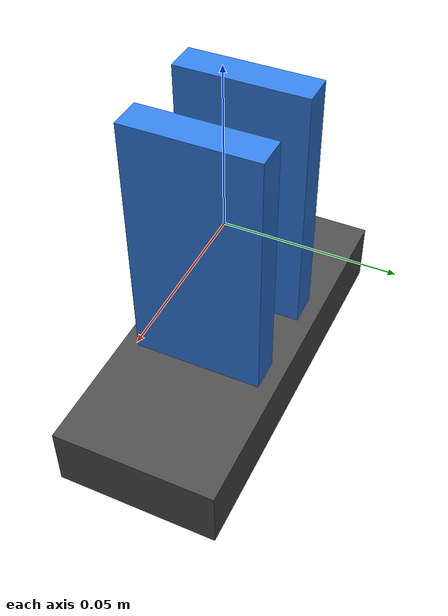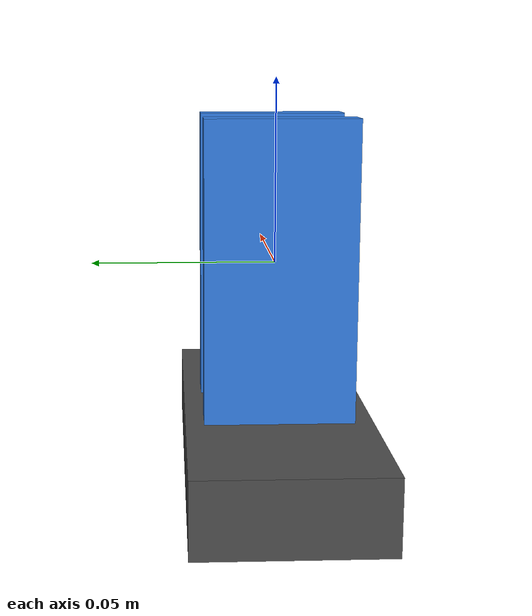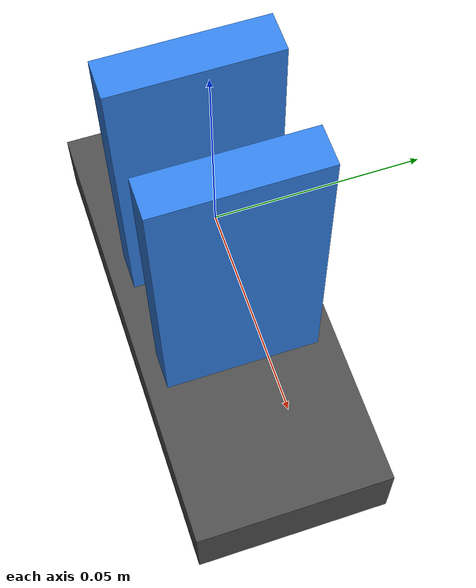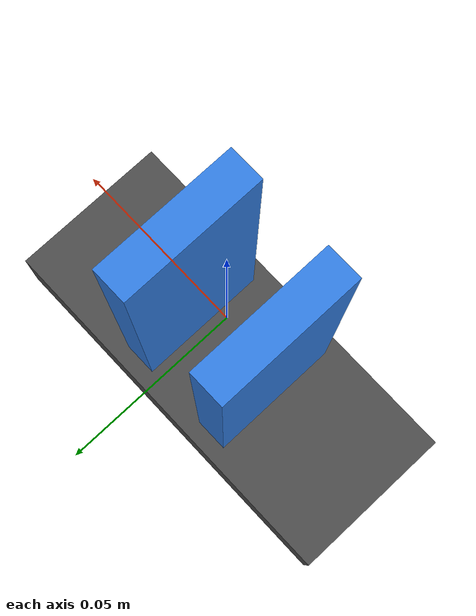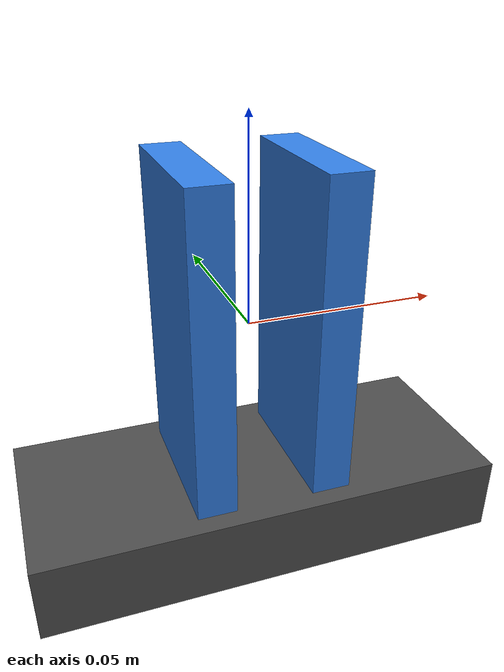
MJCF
<mujoco model="minimal parallel gripper">
  <option timestep="0.002" gravity="0 0 0"/>

  <worldbody>
    <body name="gripper_base">
      <geom name="base_visual" type="box" size="0.06 0.025 0.01"
            pos="0 0 -0.05" contype="0" conaffinity="0" rgba="0.3 0.3 0.3 1"/>

      <body name="left_finger" pos="-0.015 0 0">
        <joint name="left_slide" type="slide" axis="-1 0 0" range="0 0.04" damping="2"/>
        <geom name="left_finger_geom" type="box" size="0.005 0.02 0.04" mass="0.1"
              rgba="0.2 0.5 0.9 1"/>
      </body>

      <body name="right_finger" pos="0.015 0 0">
        <joint name="right_slide" type="slide" axis="1 0 0" range="0 0.04" damping="2"/>
        <geom name="right_finger_geom" type="box" size="0.005 0.02 0.04" mass="0.1"
              rgba="0.2 0.5 0.9 1"/>
      </body>
    </body>
  </worldbody>

  <actuator>
    <!-- With unit transmission gear, ctrl and slide-joint target are both meters. -->
    <position name="left_position" joint="left_slide" kp="100"
              ctrlrange="0 0.04" forcerange="-10 10"/>
    <position name="right_position" joint="right_slide" kp="100"
              ctrlrange="0 0.04" forcerange="-10 10"/>
  </actuator>
</mujoco>
